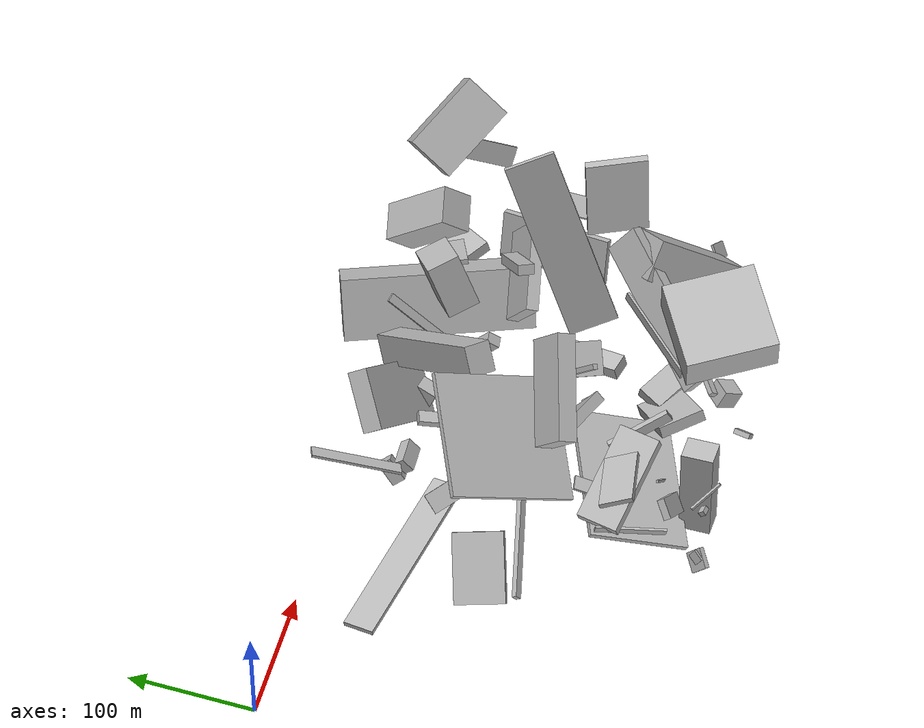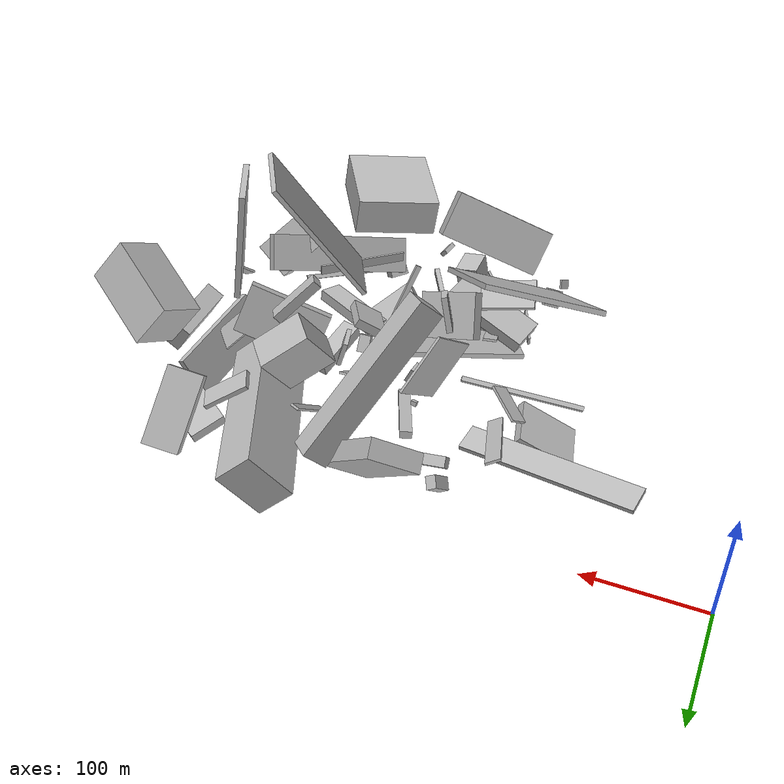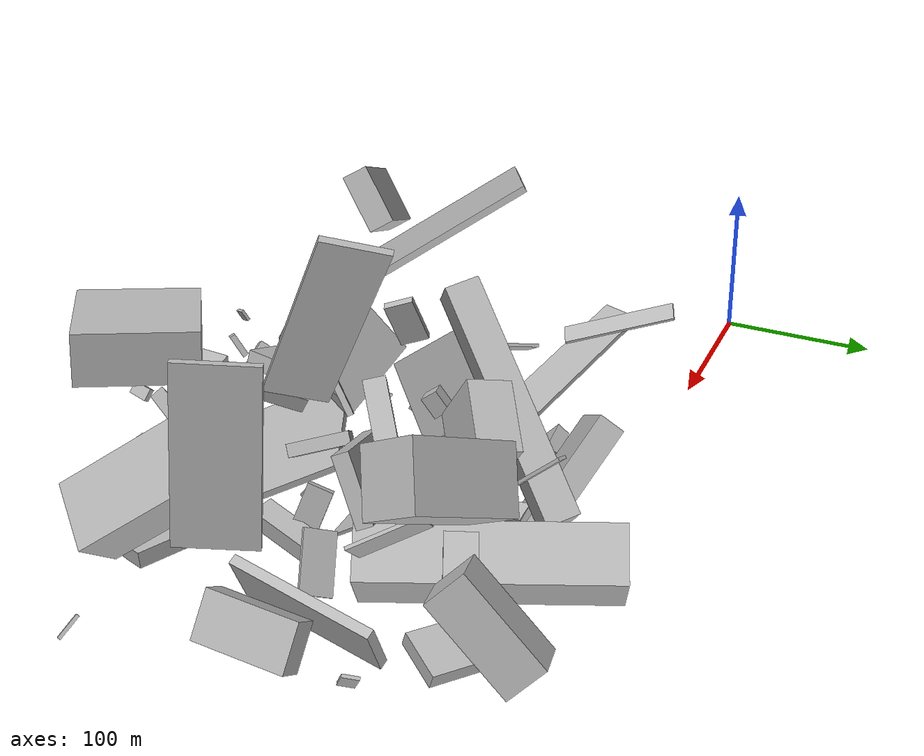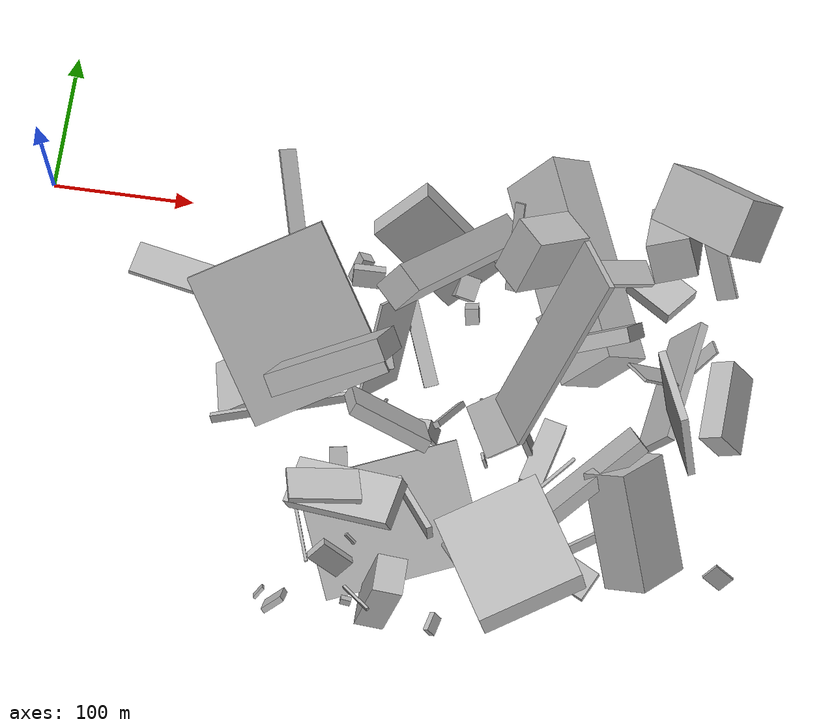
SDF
<sdf version="1.6">
 <world name="default">
  <model name="building_3">
   <static>0</static>
   <pose>400.7232043774016 -100.26530416382178 36.819228830014104 1.5746231596231484 -0.6868995202137004 -2.7741150252003943</pose>
   <link name="link">
    <gravity>0</gravity>
    <pose>0 0 75.0 0 0 0</pose>
    <collision name="collision"><geometry><box><size>35 49 150</size></box></geometry></collision>
    <visual name="visual">
     <cast_shadows>0</cast_shadows>
     <geometry><box><size>35 49 150</size></box></geometry>
     <material>
      <script>
       <uri>model://HANNAS_wall/materials/scripts</uri>
       <uri>model://HANNAS_wall/materials/textures</uri>
       <name>vrc/HANNAS_wall</name>
      </script>
     </material>
    </visual>
   </link>
  </model>
  <model name="building_6">
   <static>0</static>
   <pose>249.8059960162078 -9.35989626910145 60.050411777133206 -2.4407371661502517 -0.5982015795128744 -1.425143302162848</pose>
   <link name="link">
    <gravity>0</gravity>
    <pose>0 0 39.5 0 0 0</pose>
    <collision name="collision"><geometry><box><size>17 48 79</size></box></geometry></collision>
    <visual name="visual">
     <cast_shadows>0</cast_shadows>
     <geometry><box><size>17 48 79</size></box></geometry>
     <material>
      <script>
       <uri>model://HANNAS_wall/materials/scripts</uri>
       <uri>model://HANNAS_wall/materials/textures</uri>
       <name>vrc/HANNAS_wall</name>
      </script>
     </material>
    </visual>
   </link>
  </model>
  <model name="building_8">
   <static>0</static>
   <pose>283.82453941514325 -58.07409207703948 78.27835317954093 0.7826187650565872 -0.1846948708546161 2.349083935095155</pose>
   <link name="link">
    <gravity>0</gravity>
    <pose>0 0 12.0 0 0 0</pose>
    <collision name="collision"><geometry><box><size>21 150 24</size></box></geometry></collision>
    <visual name="visual">
     <cast_shadows>0</cast_shadows>
     <geometry><box><size>21 150 24</size></box></geometry>
     <material>
      <script>
       <uri>model://HANNAS_wall/materials/scripts</uri>
       <uri>model://HANNAS_wall/materials/textures</uri>
       <name>vrc/HANNAS_wall</name>
      </script>
     </material>
    </visual>
   </link>
  </model>
  <model name="building_11">
   <static>0</static>
   <pose>342.0750665528675 -164.25402432366943 97.11386991848852 0.30846788776308837 -0.4633881316802767 -2.7723222896151545</pose>
   <link name="link">
    <gravity>0</gravity>
    <pose>0 0 75.0 0 0 0</pose>
    <collision name="collision"><geometry><box><size>4 39 150</size></box></geometry></collision>
    <visual name="visual">
     <cast_shadows>0</cast_shadows>
     <geometry><box><size>4 39 150</size></box></geometry>
     <material>
      <script>
       <uri>model://HANNAS_wall/materials/scripts</uri>
       <uri>model://HANNAS_wall/materials/textures</uri>
       <name>vrc/HANNAS_wall</name>
      </script>
     </material>
    </visual>
   </link>
  </model>
  <model name="building_15">
   <static>0</static>
   <pose>256.10322530967653 -179.5139326060927 24.528524624304758 -1.9832252682769322 0.03601611775122781 -2.7498001587166243</pose>
   <link name="link">
    <gravity>0</gravity>
    <pose>0 0 41.5 0 0 0</pose>
    <collision name="collision"><geometry><box><size>112 4 83</size></box></geometry></collision>
    <visual name="visual">
     <cast_shadows>0</cast_shadows>
     <geometry><box><size>112 4 83</size></box></geometry>
     <material>
      <script>
       <uri>model://HANNAS_wall/materials/scripts</uri>
       <uri>model://HANNAS_wall/materials/textures</uri>
       <name>vrc/HANNAS_wall</name>
      </script>
     </material>
    </visual>
   </link>
  </model>
  <model name="building_17">
   <static>0</static>
   <pose>275.80232383729583 -220.3252380281648 66.06047719996454 -1.9225408868727267 0.03156974143122351 1.3616282650019396</pose>
   <link name="link">
    <gravity>0</gravity>
    <pose>0 0 38.5 0 0 0</pose>
    <collision name="collision"><geometry><box><size>33 11 77</size></box></geometry></collision>
    <visual name="visual">
     <cast_shadows>0</cast_shadows>
     <geometry><box><size>33 11 77</size></box></geometry>
     <material>
      <script>
       <uri>model://HANNAS_wall/materials/scripts</uri>
       <uri>model://HANNAS_wall/materials/textures</uri>
       <name>vrc/HANNAS_wall</name>
      </script>
     </material>
    </visual>
   </link>
  </model>
  <model name="building_20">
   <static>0</static>
   <pose>455.6300632716984 -153.53637858365113 69.32458853663478 -0.061413059446901036 -0.12822496730034946 0.4000631064691787</pose>
   <link name="link">
    <gravity>0</gravity>
    <pose>0 0 53.0 0 0 0</pose>
    <collision name="collision"><geometry><box><size>5 48 106</size></box></geometry></collision>
    <visual name="visual">
     <cast_shadows>0</cast_shadows>
     <geometry><box><size>5 48 106</size></box></geometry>
     <material>
      <script>
       <uri>model://HANNAS_wall/materials/scripts</uri>
       <uri>model://HANNAS_wall/materials/textures</uri>
       <name>vrc/HANNAS_wall</name>
      </script>
     </material>
    </visual>
   </link>
  </model>
  <model name="building_22">
   <static>0</static>
   <pose>203.31202137733933 -280.55106483838466 21.639780489372612 0.49846990535975133 -0.4425933166383371 0.600996795183263</pose>
   <link name="link">
    <gravity>0</gravity>
    <pose>0 0 8.0 0 0 0</pose>
    <collision name="collision"><geometry><box><size>16 4 16</size></box></geometry></collision>
    <visual name="visual">
     <cast_shadows>0</cast_shadows>
     <geometry><box><size>16 4 16</size></box></geometry>
     <material>
      <script>
       <uri>model://HANNAS_wall/materials/scripts</uri>
       <uri>model://HANNAS_wall/materials/textures</uri>
       <name>vrc/HANNAS_wall</name>
      </script>
     </material>
    </visual>
   </link>
  </model>
  <model name="building_30">
   <static>0</static>
   <pose>320.5811360759748 -242.96147282906216 25.59845704083638 -2.1562574136717734 -0.08900785039896718 -0.8705907861708161</pose>
   <link name="link">
    <gravity>0</gravity>
    <pose>0 0 26.0 0 0 0</pose>
    <collision name="collision"><geometry><box><size>37 9 52</size></box></geometry></collision>
    <visual name="visual">
     <cast_shadows>0</cast_shadows>
     <geometry><box><size>37 9 52</size></box></geometry>
     <material>
      <script>
       <uri>model://HANNAS_wall/materials/scripts</uri>
       <uri>model://HANNAS_wall/materials/textures</uri>
       <name>vrc/HANNAS_wall</name>
      </script>
     </material>
    </visual>
   </link>
  </model>
  <model name="building_37">
   <static>0</static>
   <pose>342.7870898554146 -56.39201421093652 86.16651222179708 0.5749660632005441 0.2207653361713216 2.2697604486269203</pose>
   <link name="link">
    <gravity>0</gravity>
    <pose>0 0 21.5 0 0 0</pose>
    <collision name="collision"><geometry><box><size>26 43 43</size></box></geometry></collision>
    <visual name="visual">
     <cast_shadows>0</cast_shadows>
     <geometry><box><size>26 43 43</size></box></geometry>
     <material>
      <script>
       <uri>model://HANNAS_wall/materials/scripts</uri>
       <uri>model://HANNAS_wall/materials/textures</uri>
       <name>vrc/HANNAS_wall</name>
      </script>
     </material>
    </visual>
   </link>
  </model>
  <model name="building_42">
   <static>0</static>
   <pose>218.45062146106616 -84.93931416702812 23.06443049843098 -1.1192822073408293 -1.4296665798428694 0.9473396144382871</pose>
   <link name="link">
    <gravity>0</gravity>
    <pose>0 0 75.0 0 0 0</pose>
    <collision name="collision"><geometry><box><size>4 24 150</size></box></geometry></collision>
    <visual name="visual">
     <cast_shadows>0</cast_shadows>
     <geometry><box><size>4 24 150</size></box></geometry>
     <material>
      <script>
       <uri>model://HANNAS_wall/materials/scripts</uri>
       <uri>model://HANNAS_wall/materials/textures</uri>
       <name>vrc/HANNAS_wall</name>
      </script>
     </material>
    </visual>
   </link>
  </model>
  <model name="building_56">
   <static>0</static>
   <pose>301.6837406844121 -160.57449679944932 90.04643139995792 -2.2499242430518294 -0.9132109262256742 -1.9810352446705801</pose>
   <link name="link">
    <gravity>0</gravity>
    <pose>0 0 2.0 0 0 0</pose>
    <collision name="collision"><geometry><box><size>55 4 4</size></box></geometry></collision>
    <visual name="visual">
     <cast_shadows>0</cast_shadows>
     <geometry><box><size>55 4 4</size></box></geometry>
     <material>
      <script>
       <uri>model://HANNAS_wall/materials/scripts</uri>
       <uri>model://HANNAS_wall/materials/textures</uri>
       <name>vrc/HANNAS_wall</name>
      </script>
     </material>
    </visual>
   </link>
  </model>
  <model name="building_61">
   <static>0</static>
   <pose>342.03449516944664 -170.9782879215725 56.28383366656549 1.352079697462719 0.5762649123531494 -2.754709867919487</pose>
   <link name="link">
    <gravity>0</gravity>
    <pose>0 0 18.5 0 0 0</pose>
    <collision name="collision"><geometry><box><size>27 8 37</size></box></geometry></collision>
    <visual name="visual">
     <cast_shadows>0</cast_shadows>
     <geometry><box><size>27 8 37</size></box></geometry>
     <material>
      <script>
       <uri>model://HANNAS_wall/materials/scripts</uri>
       <uri>model://HANNAS_wall/materials/textures</uri>
       <name>vrc/HANNAS_wall</name>
      </script>
     </material>
    </visual>
   </link>
  </model>
  <model name="building_63">
   <static>0</static>
   <pose>453.70757129632057 -37.60251704392006 137.69188865606054 0.6964917036857154 -0.878199727571596 -2.6859942797668612</pose>
   <link name="link">
    <gravity>0</gravity>
    <pose>0 0 19.5 0 0 0</pose>
    <collision name="collision"><geometry><box><size>38 66 39</size></box></geometry></collision>
    <visual name="visual">
     <cast_shadows>0</cast_shadows>
     <geometry><box><size>38 66 39</size></box></geometry>
     <material>
      <script>
       <uri>model://HANNAS_wall/materials/scripts</uri>
       <uri>model://HANNAS_wall/materials/textures</uri>
       <name>vrc/HANNAS_wall</name>
      </script>
     </material>
    </visual>
   </link>
  </model>
  <model name="building_66">
   <static>0</static>
   <pose>389.00644775721867 -251.35146654442886 24.913412805955144 -2.9186980805046154 -1.0122162704660531 -2.4811601793955247</pose>
   <link name="link">
    <gravity>0</gravity>
    <pose>0 0 2.0 0 0 0</pose>
    <collision name="collision"><geometry><box><size>10 5 4</size></box></geometry></collision>
    <visual name="visual">
     <cast_shadows>0</cast_shadows>
     <geometry><box><size>10 5 4</size></box></geometry>
     <material>
      <script>
       <uri>model://HANNAS_wall/materials/scripts</uri>
       <uri>model://HANNAS_wall/materials/textures</uri>
       <name>vrc/HANNAS_wall</name>
      </script>
     </material>
    </visual>
   </link>
  </model>
  <model name="building_67">
   <static>0</static>
   <pose>374.63086365784727 -160.3002726774081 15.95091853002203 -1.6543916277716617 -1.3280688763675144 1.409454460571306</pose>
   <link name="link">
    <gravity>0</gravity>
    <pose>0 0 8.0 0 0 0</pose>
    <collision name="collision"><geometry><box><size>11 52 16</size></box></geometry></collision>
    <visual name="visual">
     <cast_shadows>0</cast_shadows>
     <geometry><box><size>11 52 16</size></box></geometry>
     <material>
      <script>
       <uri>model://HANNAS_wall/materials/scripts</uri>
       <uri>model://HANNAS_wall/materials/textures</uri>
       <name>vrc/HANNAS_wall</name>
      </script>
     </material>
    </visual>
   </link>
  </model>
  <model name="building_69">
   <static>0</static>
   <pose>423.58658630744253 -27.499558955287103 43.62927521306019 -1.0193027162067871 0.0683366388946676 1.9913909757215567</pose>
   <link name="link">
    <gravity>0</gravity>
    <pose>0 0 21.0 0 0 0</pose>
    <collision name="collision"><geometry><box><size>19 4 42</size></box></geometry></collision>
    <visual name="visual">
     <cast_shadows>0</cast_shadows>
     <geometry><box><size>19 4 42</size></box></geometry>
     <material>
      <script>
       <uri>model://HANNAS_wall/materials/scripts</uri>
       <uri>model://HANNAS_wall/materials/textures</uri>
       <name>vrc/HANNAS_wall</name>
      </script>
     </material>
    </visual>
   </link>
  </model>
  <model name="building_75">
   <static>0</static>
   <pose>378.9665400062952 -199.55402995482305 68.71775584187155 0.58449938243396 -0.28144017469549026 0.7641359160350393</pose>
   <link name="link">
    <gravity>0</gravity>
    <pose>0 0 15.5 0 0 0</pose>
    <collision name="collision"><geometry><box><size>129 9 31</size></box></geometry></collision>
    <visual name="visual">
     <cast_shadows>0</cast_shadows>
     <geometry><box><size>129 9 31</size></box></geometry>
     <material>
      <script>
       <uri>model://HANNAS_wall/materials/scripts</uri>
       <uri>model://HANNAS_wall/materials/textures</uri>
       <name>vrc/HANNAS_wall</name>
      </script>
     </material>
    </visual>
   </link>
  </model>
  <model name="building_76">
   <static>0</static>
   <pose>335.17853056322235 -228.04115863604432 118.4510870282873 -1.1456977090863483 -1.430021187443493 -3.031741256014587</pose>
   <link name="link">
    <gravity>0</gravity>
    <pose>0 0 36.0 0 0 0</pose>
    <collision name="collision"><geometry><box><size>32 70 72</size></box></geometry></collision>
    <visual name="visual">
     <cast_shadows>0</cast_shadows>
     <geometry><box><size>32 70 72</size></box></geometry>
     <material>
      <script>
       <uri>model://HANNAS_wall/materials/scripts</uri>
       <uri>model://HANNAS_wall/materials/textures</uri>
       <name>vrc/HANNAS_wall</name>
      </script>
     </material>
    </visual>
   </link>
  </model>
  <model name="building_77">
   <static>0</static>
   <pose>455.8642511644523 -60.75334609800657 28.488894410486484 -1.411188696959997 -0.4510194526232841 2.901392364432419</pose>
   <link name="link">
    <gravity>0</gravity>
    <pose>0 0 45.5 0 0 0</pose>
    <collision name="collision"><geometry><box><size>6 39 91</size></box></geometry></collision>
    <visual name="visual">
     <cast_shadows>0</cast_shadows>
     <geometry><box><size>6 39 91</size></box></geometry>
     <material>
      <script>
       <uri>model://HANNAS_wall/materials/scripts</uri>
       <uri>model://HANNAS_wall/materials/textures</uri>
       <name>vrc/HANNAS_wall</name>
      </script>
     </material>
    </visual>
   </link>
  </model>
  <model name="building_78">
   <static>0</static>
   <pose>190.37337611935817 -148.0967305183933 24.541949124553405 -0.9268081945098159 0.19524713065919536 -2.9118855316253764</pose>
   <link name="link">
    <gravity>0</gravity>
    <pose>0 0 2.0 0 0 0</pose>
    <collision name="collision"><geometry><box><size>106 6 4</size></box></geometry></collision>
    <visual name="visual">
     <cast_shadows>0</cast_shadows>
     <geometry><box><size>106 6 4</size></box></geometry>
     <material>
      <script>
       <uri>model://HANNAS_wall/materials/scripts</uri>
       <uri>model://HANNAS_wall/materials/textures</uri>
       <name>vrc/HANNAS_wall</name>
      </script>
     </material>
    </visual>
   </link>
  </model>
  <model name="building_81">
   <static>0</static>
   <pose>183.76205360622504 -118.93189009528858 22.859686040570452 -2.8775550541175092 -0.9529834735342866 -3.139402621615978</pose>
   <link name="link">
    <gravity>0</gravity>
    <pose>0 0 27.5 0 0 0</pose>
    <collision name="collision"><geometry><box><size>8 40 55</size></box></geometry></collision>
    <visual name="visual">
     <cast_shadows>0</cast_shadows>
     <geometry><box><size>8 40 55</size></box></geometry>
     <material>
      <script>
       <uri>model://HANNAS_wall/materials/scripts</uri>
       <uri>model://HANNAS_wall/materials/textures</uri>
       <name>vrc/HANNAS_wall</name>
      </script>
     </material>
    </visual>
   </link>
  </model>
  <model name="building_83">
   <static>0</static>
   <pose>378.692360575143 -234.49550290713046 44.729598898674986 2.256088524381262 -0.0017739532466718826 0.5760848912105392</pose>
   <link name="link">
    <gravity>0</gravity>
    <pose>0 0 3.0 0 0 0</pose>
    <collision name="collision"><geometry><box><size>90 4 6</size></box></geometry></collision>
    <visual name="visual">
     <cast_shadows>0</cast_shadows>
     <geometry><box><size>90 4 6</size></box></geometry>
     <material>
      <script>
       <uri>model://HANNAS_wall/materials/scripts</uri>
       <uri>model://HANNAS_wall/materials/textures</uri>
       <name>vrc/HANNAS_wall</name>
      </script>
     </material>
    </visual>
   </link>
  </model>
  <model name="building_94">
   <static>0</static>
   <pose>194.2150375081659 -135.2967480162499 145.6976247948564 2.791481305953773 -0.49091473433358496 2.181394052836374</pose>
   <link name="link">
    <gravity>0</gravity>
    <pose>0 0 2.0 0 0 0</pose>
    <collision name="collision"><geometry><box><size>106 95 4</size></box></geometry></collision>
    <visual name="visual">
     <cast_shadows>0</cast_shadows>
     <geometry><box><size>106 95 4</size></box></geometry>
     <material>
      <script>
       <uri>model://HANNAS_wall/materials/scripts</uri>
       <uri>model://HANNAS_wall/materials/textures</uri>
       <name>vrc/HANNAS_wall</name>
      </script>
     </material>
    </visual>
   </link>
  </model>
  <model name="building_98">
   <static>0</static>
   <pose>377.9668277440448 -227.0735014212487 11.706374025916295 -2.985274855237979 -0.007883645874206811 -0.48545492642995236</pose>
   <link name="link">
    <gravity>0</gravity>
    <pose>0 0 5.0 0 0 0</pose>
    <collision name="collision"><geometry><box><size>71 21 10</size></box></geometry></collision>
    <visual name="visual">
     <cast_shadows>0</cast_shadows>
     <geometry><box><size>71 21 10</size></box></geometry>
     <material>
      <script>
       <uri>model://HANNAS_wall/materials/scripts</uri>
       <uri>model://HANNAS_wall/materials/textures</uri>
       <name>vrc/HANNAS_wall</name>
      </script>
     </material>
    </visual>
   </link>
  </model>
  <model name="building_100">
   <static>0</static>
   <pose>353.57212825610566 -104.63754038380979 70.68429046655261 0.7609633449727402 1.0338372561628417 1.044114014062493</pose>
   <link name="link">
    <gravity>0</gravity>
    <pose>0 0 35.0 0 0 0</pose>
    <collision name="collision"><geometry><box><size>42 10 70</size></box></geometry></collision>
    <visual name="visual">
     <cast_shadows>0</cast_shadows>
     <geometry><box><size>42 10 70</size></box></geometry>
     <material>
      <script>
       <uri>model://HANNAS_wall/materials/scripts</uri>
       <uri>model://HANNAS_wall/materials/textures</uri>
       <name>vrc/HANNAS_wall</name>
      </script>
     </material>
    </visual>
   </link>
  </model>
  <model name="building_102">
   <static>0</static>
   <pose>187.67808871741846 -57.17935320255938 76.97339272908772 1.230039278464681 -0.3925465923035534 -2.743150952206719</pose>
   <link name="link">
    <gravity>0</gravity>
    <pose>0 0 35.0 0 0 0</pose>
    <collision name="collision"><geometry><box><size>12 2 70</size></box></geometry></collision>
    <visual name="visual">
     <cast_shadows>0</cast_shadows>
     <geometry><box><size>12 2 70</size></box></geometry>
     <material>
      <script>
       <uri>model://HANNAS_wall/materials/scripts</uri>
       <uri>model://HANNAS_wall/materials/textures</uri>
       <name>vrc/HANNAS_wall</name>
      </script>
     </material>
    </visual>
   </link>
  </model>
  <model name="building_109">
   <static>0</static>
   <pose>442.2906440396457 -244.5617679803449 52.02047222714691 0.8489178652696278 -0.5672450973754882 -2.329650686880078</pose>
   <link name="link">
    <gravity>0</gravity>
    <pose>0 0 40.0 0 0 0</pose>
    <collision name="collision"><geometry><box><size>42 33 80</size></box></geometry></collision>
    <visual name="visual">
     <cast_shadows>0</cast_shadows>
     <geometry><box><size>42 33 80</size></box></geometry>
     <material>
      <script>
       <uri>model://HANNAS_wall/materials/scripts</uri>
       <uri>model://HANNAS_wall/materials/textures</uri>
       <name>vrc/HANNAS_wall</name>
      </script>
     </material>
    </visual>
   </link>
  </model>
  <model name="building_120">
   <static>0</static>
   <pose>474.26237849769825 -62.98052972588486 103.96808424975801 -0.87374163192506 -0.79611929234284 -0.14211253075174124</pose>
   <link name="link">
    <gravity>0</gravity>
    <pose>0 0 21.0 0 0 0</pose>
    <collision name="collision"><geometry><box><size>17 2 42</size></box></geometry></collision>
    <visual name="visual">
     <cast_shadows>0</cast_shadows>
     <geometry><box><size>17 2 42</size></box></geometry>
     <material>
      <script>
       <uri>model://HANNAS_wall/materials/scripts</uri>
       <uri>model://HANNAS_wall/materials/textures</uri>
       <name>vrc/HANNAS_wall</name>
      </script>
     </material>
    </visual>
   </link>
  </model>
  <model name="building_133">
   <static>0</static>
   <pose>236.75137851136412 -257.331870179014 41.999056242859744 2.342771935211681 -0.6793201863498327 2.847297059137873</pose>
   <link name="link">
    <gravity>0</gravity>
    <pose>0 0 3.0 0 0 0</pose>
    <collision name="collision"><geometry><box><size>26 16 6</size></box></geometry></collision>
    <visual name="visual">
     <cast_shadows>0</cast_shadows>
     <geometry><box><size>26 16 6</size></box></geometry>
     <material>
      <script>
       <uri>model://HANNAS_wall/materials/scripts</uri>
       <uri>model://HANNAS_wall/materials/textures</uri>
       <name>vrc/HANNAS_wall</name>
      </script>
     </material>
    </visual>
   </link>
  </model>
  <model name="building_138">
   <static>0</static>
   <pose>334.57306290378904 -125.3438051282944 18.649556073219202 -2.1932804751355475 -0.05953805358994427 3.075025915402399</pose>
   <link name="link">
    <gravity>0</gravity>
    <pose>0 0 11.0 0 0 0</pose>
    <collision name="collision"><geometry><box><size>29 2 22</size></box></geometry></collision>
    <visual name="visual">
     <cast_shadows>0</cast_shadows>
     <geometry><box><size>29 2 22</size></box></geometry>
     <material>
      <script>
       <uri>model://HANNAS_wall/materials/scripts</uri>
       <uri>model://HANNAS_wall/materials/textures</uri>
       <name>vrc/HANNAS_wall</name>
      </script>
     </material>
    </visual>
   </link>
  </model>
  <model name="building_141">
   <static>0</static>
   <pose>348.48565390434555 -265.6439430789362 28.12695520787818 0.5576087516655605 0.08684432045274591 0.729059731369129</pose>
   <link name="link">
    <gravity>0</gravity>
    <pose>0 0 7.5 0 0 0</pose>
    <collision name="collision"><geometry><box><size>16 17 15</size></box></geometry></collision>
    <visual name="visual">
     <cast_shadows>0</cast_shadows>
     <geometry><box><size>16 17 15</size></box></geometry>
     <material>
      <script>
       <uri>model://HANNAS_wall/materials/scripts</uri>
       <uri>model://HANNAS_wall/materials/textures</uri>
       <name>vrc/HANNAS_wall</name>
      </script>
     </material>
    </visual>
   </link>
  </model>
  <model name="building_144">
   <static>0</static>
   <pose>425.29170315274797 -42.209704685275895 24.953736101606363 1.850140861631733 0.11363607348067584 2.5267067650844606</pose>
   <link name="link">
    <gravity>0</gravity>
    <pose>0 0 15.5 0 0 0</pose>
    <collision name="collision"><geometry><box><size>37 9 31</size></box></geometry></collision>
    <visual name="visual">
     <cast_shadows>0</cast_shadows>
     <geometry><box><size>37 9 31</size></box></geometry>
     <material>
      <script>
       <uri>model://HANNAS_wall/materials/scripts</uri>
       <uri>model://HANNAS_wall/materials/textures</uri>
       <name>vrc/HANNAS_wall</name>
      </script>
     </material>
    </visual>
   </link>
  </model>
  <model name="building_160">
   <static>0</static>
   <pose>248.48393201222876 -242.76888070063077 52.436184985414776 1.1059395031036856 0.6293636018382271 -0.5712401930632344</pose>
   <link name="link">
    <gravity>0</gravity>
    <pose>0 0 1.0 0 0 0</pose>
    <collision name="collision"><geometry><box><size>9 2 2</size></box></geometry></collision>
    <visual name="visual">
     <cast_shadows>0</cast_shadows>
     <geometry><box><size>9 2 2</size></box></geometry>
     <material>
      <script>
       <uri>model://HANNAS_wall/materials/scripts</uri>
       <uri>model://HANNAS_wall/materials/textures</uri>
       <name>vrc/HANNAS_wall</name>
      </script>
     </material>
    </visual>
   </link>
  </model>
  <model name="building_161">
   <static>0</static>
   <pose>469.98809709306573 -76.87438423394211 14.358504564943306 -1.9090101754957063 -0.8439152349934734 0.6547666337845596</pose>
   <link name="link">
    <gravity>0</gravity>
    <pose>0 0 5.0 0 0 0</pose>
    <collision name="collision"><geometry><box><size>27 2 10</size></box></geometry></collision>
    <visual name="visual">
     <cast_shadows>0</cast_shadows>
     <geometry><box><size>27 2 10</size></box></geometry>
     <material>
      <script>
       <uri>model://HANNAS_wall/materials/scripts</uri>
       <uri>model://HANNAS_wall/materials/textures</uri>
       <name>vrc/HANNAS_wall</name>
      </script>
     </material>
    </visual>
   </link>
  </model>
  <model name="building_164">
   <static>0</static>
   <pose>452.7944323918544 -0.6709184443684109 52.53451348809 -1.9855708908745957 0.765762755563847 1.490940481445176</pose>
   <link name="link">
    <gravity>0</gravity>
    <pose>0 0 15.0 0 0 0</pose>
    <collision name="collision"><geometry><box><size>66 28 30</size></box></geometry></collision>
    <visual name="visual">
     <cast_shadows>0</cast_shadows>
     <geometry><box><size>66 28 30</size></box></geometry>
     <material>
      <script>
       <uri>model://HANNAS_wall/materials/scripts</uri>
       <uri>model://HANNAS_wall/materials/textures</uri>
       <name>vrc/HANNAS_wall</name>
      </script>
     </material>
    </visual>
   </link>
  </model>
  <model name="building_167">
   <static>0</static>
   <pose>192.81256888379622 -285.0755595584452 46.74404286133776 2.39905570534 1.033450458500303 1.832667025044761</pose>
   <link name="link">
    <gravity>0</gravity>
    <pose>0 0 1.0 0 0 0</pose>
    <collision name="collision"><geometry><box><size>8 9 2</size></box></geometry></collision>
    <visual name="visual">
     <cast_shadows>0</cast_shadows>
     <geometry><box><size>8 9 2</size></box></geometry>
     <material>
      <script>
       <uri>model://HANNAS_wall/materials/scripts</uri>
       <uri>model://HANNAS_wall/materials/textures</uri>
       <name>vrc/HANNAS_wall</name>
      </script>
     </material>
    </visual>
   </link>
  </model>
  <model name="building_168">
   <static>0</static>
   <pose>327.3460568246239 -163.22476841169257 13.052287750252077 0.8184809085715161 -0.19681944100388896 0.4229492824526815</pose>
   <link name="link">
    <gravity>0</gravity>
    <pose>0 0 5.0 0 0 0</pose>
    <collision name="collision"><geometry><box><size>2 7 10</size></box></geometry></collision>
    <visual name="visual">
     <cast_shadows>0</cast_shadows>
     <geometry><box><size>2 7 10</size></box></geometry>
     <material>
      <script>
       <uri>model://HANNAS_wall/materials/scripts</uri>
       <uri>model://HANNAS_wall/materials/textures</uri>
       <name>vrc/HANNAS_wall</name>
      </script>
     </material>
    </visual>
   </link>
  </model>
  <model name="building_170">
   <static>0</static>
   <pose>257.06722900853606 -148.243017459876 49.943173674339334 -0.8397261388320755 -0.01862867217839929 -0.4957408060060456</pose>
   <link name="link">
    <gravity>0</gravity>
    <pose>0 0 2.5 0 0 0</pose>
    <collision name="collision"><geometry><box><size>2 2 5</size></box></geometry></collision>
    <visual name="visual">
     <cast_shadows>0</cast_shadows>
     <geometry><box><size>2 2 5</size></box></geometry>
     <material>
      <script>
       <uri>model://HANNAS_wall/materials/scripts</uri>
       <uri>model://HANNAS_wall/materials/textures</uri>
       <name>vrc/HANNAS_wall</name>
      </script>
     </material>
    </visual>
   </link>
  </model>
  <model name="building_171">
   <static>0</static>
   <pose>257.93821569915593 -142.39423678772954 103.1532561581723 0.5273883705416627 1.2101560512822376 2.4485151033513635</pose>
   <link name="link">
    <gravity>0</gravity>
    <pose>0 0 9.0 0 0 0</pose>
    <collision name="collision"><geometry><box><size>30 5 18</size></box></geometry></collision>
    <visual name="visual">
     <cast_shadows>0</cast_shadows>
     <geometry><box><size>30 5 18</size></box></geometry>
     <material>
      <script>
       <uri>model://HANNAS_wall/materials/scripts</uri>
       <uri>model://HANNAS_wall/materials/textures</uri>
       <name>vrc/HANNAS_wall</name>
      </script>
     </material>
    </visual>
   </link>
  </model>
  <model name="building_172">
   <static>0</static>
   <pose>233.25682615930128 -51.449259589552554 28.16282381305726 -2.2962712782470396 0.09306465288671514 0.04848714262025492</pose>
   <link name="link">
    <gravity>0</gravity>
    <pose>0 0 4.5 0 0 0</pose>
    <collision name="collision"><geometry><box><size>22 13 9</size></box></geometry></collision>
    <visual name="visual">
     <cast_shadows>0</cast_shadows>
     <geometry><box><size>22 13 9</size></box></geometry>
     <material>
      <script>
       <uri>model://HANNAS_wall/materials/scripts</uri>
       <uri>model://HANNAS_wall/materials/textures</uri>
       <name>vrc/HANNAS_wall</name>
      </script>
     </material>
    </visual>
   </link>
  </model>
  <model name="building_181">
   <static>0</static>
   <pose>308.64960592535965 -86.30315550116993 84.25714774290816 0.6459808644494199 -0.08682089189609803 0.14075975544298233</pose>
   <link name="link">
    <gravity>0</gravity>
    <pose>0 0 7.0 0 0 0</pose>
    <collision name="collision"><geometry><box><size>9 11 14</size></box></geometry></collision>
    <visual name="visual">
     <cast_shadows>0</cast_shadows>
     <geometry><box><size>9 11 14</size></box></geometry>
     <material>
      <script>
       <uri>model://HANNAS_wall/materials/scripts</uri>
       <uri>model://HANNAS_wall/materials/textures</uri>
       <name>vrc/HANNAS_wall</name>
      </script>
     </material>
    </visual>
   </link>
  </model>
  <model name="building_185">
   <static>0</static>
   <pose>230.16205437859935 -228.0050140669266 78.55919757616053 -1.9985901880870622 0.17299158502240258 0.16616158537221887</pose>
   <link name="link">
    <gravity>0</gravity>
    <pose>0 0 13.5 0 0 0</pose>
    <collision name="collision"><geometry><box><size>48 4 27</size></box></geometry></collision>
    <visual name="visual">
     <cast_shadows>0</cast_shadows>
     <geometry><box><size>48 4 27</size></box></geometry>
     <material>
      <script>
       <uri>model://HANNAS_wall/materials/scripts</uri>
       <uri>model://HANNAS_wall/materials/textures</uri>
       <name>vrc/HANNAS_wall</name>
      </script>
     </material>
    </visual>
   </link>
  </model>
  <model name="building_191">
   <static>0</static>
   <pose>271.80630107821156 -85.80189877498765 34.704599463074764 -2.845519266553119 -0.04590047314928515 0.3702690318376813</pose>
   <link name="link">
    <gravity>0</gravity>
    <pose>0 0 3.0 0 0 0</pose>
    <collision name="collision"><geometry><box><size>10 80 6</size></box></geometry></collision>
    <visual name="visual">
     <cast_shadows>0</cast_shadows>
     <geometry><box><size>10 80 6</size></box></geometry>
     <material>
      <script>
       <uri>model://HANNAS_wall/materials/scripts</uri>
       <uri>model://HANNAS_wall/materials/textures</uri>
       <name>vrc/HANNAS_wall</name>
      </script>
     </material>
    </visual>
   </link>
  </model>
  <model name="building_192">
   <static>0</static>
   <pose>273.9332296322337 -197.32580578722477 42.63116046278279 1.114618588792637 0.10870217548467712 0.5323994199005677</pose>
   <link name="link">
    <gravity>0</gravity>
    <pose>0 0 26.0 0 0 0</pose>
    <collision name="collision"><geometry><box><size>4 10 52</size></box></geometry></collision>
    <visual name="visual">
     <cast_shadows>0</cast_shadows>
     <geometry><box><size>4 10 52</size></box></geometry>
     <material>
      <script>
       <uri>model://HANNAS_wall/materials/scripts</uri>
       <uri>model://HANNAS_wall/materials/textures</uri>
       <name>vrc/HANNAS_wall</name>
      </script>
     </material>
    </visual>
   </link>
  </model>
  <model name="building_195">
   <static>0</static>
   <pose>193.34809481468483 -174.60266771863968 152.2586609441886 1.073655244321366 -0.4537797855203929 2.1029818257239903</pose>
   <link name="link">
    <gravity>0</gravity>
    <pose>0 0 40.0 0 0 0</pose>
    <collision name="collision"><geometry><box><size>15 35 80</size></box></geometry></collision>
    <visual name="visual">
     <cast_shadows>0</cast_shadows>
     <geometry><box><size>15 35 80</size></box></geometry>
     <material>
      <script>
       <uri>model://HANNAS_wall/materials/scripts</uri>
       <uri>model://HANNAS_wall/materials/textures</uri>
       <name>vrc/HANNAS_wall</name>
      </script>
     </material>
    </visual>
   </link>
  </model>
  <model name="building_200">
   <static>0</static>
   <pose>277.94123191800776 -266.4947351242309 61.425327252474055 -3.0811240332363923 -0.15968265830107473 3.1141018746180245</pose>
   <link name="link">
    <gravity>0</gravity>
    <pose>0 0 40.0 0 0 0</pose>
    <collision name="collision"><geometry><box><size>20 25 80</size></box></geometry></collision>
    <visual name="visual">
     <cast_shadows>0</cast_shadows>
     <geometry><box><size>20 25 80</size></box></geometry>
     <material>
      <script>
       <uri>model://HANNAS_wall/materials/scripts</uri>
       <uri>model://HANNAS_wall/materials/textures</uri>
       <name>vrc/HANNAS_wall</name>
      </script>
     </material>
    </visual>
   </link>
  </model>
  <model name="building_205">
   <static>0</static>
   <pose>366.9024658029755 -90.23249205713024 114.33710885247083 1.819063548646583 -0.8506539104174561 0.32659045210595655</pose>
   <link name="link">
    <gravity>0</gravity>
    <pose>0 0 6.5 0 0 0</pose>
    <collision name="collision"><geometry><box><size>8 45 13</size></box></geometry></collision>
    <visual name="visual">
     <cast_shadows>0</cast_shadows>
     <geometry><box><size>8 45 13</size></box></geometry>
     <material>
      <script>
       <uri>model://HANNAS_wall/materials/scripts</uri>
       <uri>model://HANNAS_wall/materials/textures</uri>
       <name>vrc/HANNAS_wall</name>
      </script>
     </material>
    </visual>
   </link>
  </model>
  <model name="building_212">
   <static>0</static>
   <pose>310.62743312958236 -286.45225181561136 49.185930638232584 1.3998171290203532 -0.6778655245382006 -0.13665191930254272</pose>
   <link name="link">
    <gravity>0</gravity>
    <pose>0 0 6.5 0 0 0</pose>
    <collision name="collision"><geometry><box><size>4 8 13</size></box></geometry></collision>
    <visual name="visual">
     <cast_shadows>0</cast_shadows>
     <geometry><box><size>4 8 13</size></box></geometry>
     <material>
      <script>
       <uri>model://HANNAS_wall/materials/scripts</uri>
       <uri>model://HANNAS_wall/materials/textures</uri>
       <name>vrc/HANNAS_wall</name>
      </script>
     </material>
    </visual>
   </link>
  </model>
  <model name="building_217">
   <static>0</static>
   <pose>387.1745086640278 -179.02644527327706 81.54447095680854 2.392897962770498 -1.4161825082994413 -1.5661553596681375</pose>
   <link name="link">
    <gravity>0</gravity>
    <pose>0 0 40.0 0 0 0</pose>
    <collision name="collision"><geometry><box><size>8 2 80</size></box></geometry></collision>
    <visual name="visual">
     <cast_shadows>0</cast_shadows>
     <geometry><box><size>8 2 80</size></box></geometry>
     <material>
      <script>
       <uri>model://HANNAS_wall/materials/scripts</uri>
       <uri>model://HANNAS_wall/materials/textures</uri>
       <name>vrc/HANNAS_wall</name>
      </script>
     </material>
    </visual>
   </link>
  </model>
  <model name="building_220">
   <static>0</static>
   <pose>260.61238705087266 -169.6037296819391 74.79358357845626 0.6631733814994198 0.9014718253847973 1.8761286381761004</pose>
   <link name="link">
    <gravity>0</gravity>
    <pose>0 0 4.5 0 0 0</pose>
    <collision name="collision"><geometry><box><size>39 57 9</size></box></geometry></collision>
    <visual name="visual">
     <cast_shadows>0</cast_shadows>
     <geometry><box><size>39 57 9</size></box></geometry>
     <material>
      <script>
       <uri>model://HANNAS_wall/materials/scripts</uri>
       <uri>model://HANNAS_wall/materials/textures</uri>
       <name>vrc/HANNAS_wall</name>
      </script>
     </material>
    </visual>
   </link>
  </model>
  <model name="building_225">
   <static>0</static>
   <pose>230.92553307576176 -180.73754499570074 48.59377987310718 3.1228191955601954 1.1630554340088737 1.7277657489510403</pose>
   <link name="link">
    <gravity>0</gravity>
    <pose>0 0 19.0 0 0 0</pose>
    <collision name="collision"><geometry><box><size>2 12 38</size></box></geometry></collision>
    <visual name="visual">
     <cast_shadows>0</cast_shadows>
     <geometry><box><size>2 12 38</size></box></geometry>
     <material>
      <script>
       <uri>model://HANNAS_wall/materials/scripts</uri>
       <uri>model://HANNAS_wall/materials/textures</uri>
       <name>vrc/HANNAS_wall</name>
      </script>
     </material>
    </visual>
   </link>
  </model>
  <model name="building_226">
   <static>0</static>
   <pose>440.22417734468996 -112.01869524665311 61.279064868130455 2.0791918504820357 0.6165011554692587 -2.0610414871332474</pose>
   <link name="link">
    <gravity>0</gravity>
    <pose>0 0 10.0 0 0 0</pose>
    <collision name="collision"><geometry><box><size>2 36 20</size></box></geometry></collision>
    <visual name="visual">
     <cast_shadows>0</cast_shadows>
     <geometry><box><size>2 36 20</size></box></geometry>
     <material>
      <script>
       <uri>model://HANNAS_wall/materials/scripts</uri>
       <uri>model://HANNAS_wall/materials/textures</uri>
       <name>vrc/HANNAS_wall</name>
      </script>
     </material>
    </visual>
   </link>
  </model>
  <model name="building_227">
   <static>0</static>
   <pose>264.59065076280945 -88.54760557113504 44.47113377346461 -3.049446024807307 0.2558766144925951 -1.71532327535891</pose>
   <link name="link">
    <gravity>0</gravity>
    <pose>0 0 2.0 0 0 0</pose>
    <collision name="collision"><geometry><box><size>3 5 4</size></box></geometry></collision>
    <visual name="visual">
     <cast_shadows>0</cast_shadows>
     <geometry><box><size>3 5 4</size></box></geometry>
     <material>
      <script>
       <uri>model://HANNAS_wall/materials/scripts</uri>
       <uri>model://HANNAS_wall/materials/textures</uri>
       <name>vrc/HANNAS_wall</name>
      </script>
     </material>
    </visual>
   </link>
  </model>
  <model name="building_229">
   <static>0</static>
   <pose>284.4321070139854 -156.43973415408092 13.989124951436292 -1.647024289519173 1.1428235261200064 -0.2072534453625656</pose>
   <link name="link">
    <gravity>0</gravity>
    <pose>0 0 5.5 0 0 0</pose>
    <collision name="collision"><geometry><box><size>17 15 11</size></box></geometry></collision>
    <visual name="visual">
     <cast_shadows>0</cast_shadows>
     <geometry><box><size>17 15 11</size></box></geometry>
     <material>
      <script>
       <uri>model://HANNAS_wall/materials/scripts</uri>
       <uri>model://HANNAS_wall/materials/textures</uri>
       <name>vrc/HANNAS_wall</name>
      </script>
     </material>
    </visual>
   </link>
  </model>
  <model name="building_232">
   <static>0</static>
   <pose>354.06269337052254 -153.48491566620817 22.81426208958409 1.2941117366374106 0.3520025975671646 1.74259568912834</pose>
   <link name="link">
    <gravity>0</gravity>
    <pose>0 0 2.0 0 0 0</pose>
    <collision name="collision"><geometry><box><size>16 40 4</size></box></geometry></collision>
    <visual name="visual">
     <cast_shadows>0</cast_shadows>
     <geometry><box><size>16 40 4</size></box></geometry>
     <material>
      <script>
       <uri>model://HANNAS_wall/materials/scripts</uri>
       <uri>model://HANNAS_wall/materials/textures</uri>
       <name>vrc/HANNAS_wall</name>
      </script>
     </material>
    </visual>
   </link>
  </model>
  <model name="building_234">
   <static>0</static>
   <pose>301.9412851771154 -45.39044299305313 21.133688724209804 -2.8566485883688504 0.2824340074100025 -0.1179320153050456</pose>
   <link name="link">
    <gravity>0</gravity>
    <pose>0 0 9.5 0 0 0</pose>
    <collision name="collision"><geometry><box><size>14 16 19</size></box></geometry></collision>
    <visual name="visual">
     <cast_shadows>0</cast_shadows>
     <geometry><box><size>14 16 19</size></box></geometry>
     <material>
      <script>
       <uri>model://HANNAS_wall/materials/scripts</uri>
       <uri>model://HANNAS_wall/materials/textures</uri>
       <name>vrc/HANNAS_wall</name>
      </script>
     </material>
    </visual>
   </link>
  </model>
  <model name="building_237">
   <static>0</static>
   <pose>256.19248650333736 -277.28538620653313 34.302030965321904 2.605302316256419 0.1620492361251188 0.7320317967273733</pose>
   <link name="link">
    <gravity>0</gravity>
    <pose>0 0 1.0 0 0 0</pose>
    <collision name="collision"><geometry><box><size>2 29 2</size></box></geometry></collision>
    <visual name="visual">
     <cast_shadows>0</cast_shadows>
     <geometry><box><size>2 29 2</size></box></geometry>
     <material>
      <script>
       <uri>model://HANNAS_wall/materials/scripts</uri>
       <uri>model://HANNAS_wall/materials/textures</uri>
       <name>vrc/HANNAS_wall</name>
      </script>
     </material>
    </visual>
   </link>
  </model>
  <model name="building_238">
   <static>0</static>
   <pose>188.56231805024822 -94.8849488269217 60.02135592538192 -0.603053072824847 0.25317352805201654 2.365154593476764</pose>
   <link name="link">
    <gravity>0</gravity>
    <pose>0 0 1.0 0 0 0</pose>
    <collision name="collision"><geometry><box><size>35 16 2</size></box></geometry></collision>
    <visual name="visual">
     <cast_shadows>0</cast_shadows>
     <geometry><box><size>35 16 2</size></box></geometry>
     <material>
      <script>
       <uri>model://HANNAS_wall/materials/scripts</uri>
       <uri>model://HANNAS_wall/materials/textures</uri>
       <name>vrc/HANNAS_wall</name>
      </script>
     </material>
    </visual>
   </link>
  </model>
  <model name="building_240">
   <static>0</static>
   <pose>477.87504741989255 -117.98175870936217 40.95580036010316 0.981425327374822 0.06391071235418735 1.5064157691295659</pose>
   <link name="link">
    <gravity>0</gravity>
    <pose>0 0 8.5 0 0 0</pose>
    <collision name="collision"><geometry><box><size>56 29 17</size></box></geometry></collision>
    <visual name="visual">
     <cast_shadows>0</cast_shadows>
     <geometry><box><size>56 29 17</size></box></geometry>
     <material>
      <script>
       <uri>model://HANNAS_wall/materials/scripts</uri>
       <uri>model://HANNAS_wall/materials/textures</uri>
       <name>vrc/HANNAS_wall</name>
      </script>
     </material>
    </visual>
   </link>
  </model>
  <model name="building_243">
   <static>0</static>
   <pose>256.12209222616394 -109.99938257069626 66.44491284619507 1.898174162560634 -0.8279677024382858 -2.1692540658016135</pose>
   <link name="link">
    <gravity>0</gravity>
    <pose>0 0 1.0 0 0 0</pose>
    <collision name="collision"><geometry><box><size>54 68 2</size></box></geometry></collision>
    <visual name="visual">
     <cast_shadows>0</cast_shadows>
     <geometry><box><size>54 68 2</size></box></geometry>
     <material>
      <script>
       <uri>model://HANNAS_wall/materials/scripts</uri>
       <uri>model://HANNAS_wall/materials/textures</uri>
       <name>vrc/HANNAS_wall</name>
      </script>
     </material>
    </visual>
   </link>
  </model>
  <model name="building_247">
   <static>0</static>
   <pose>245.98473230324075 -277.7368348736722 24.322756848632906 -1.805205452204437 0.8185693380653414 -1.824028591810125</pose>
   <link name="link">
    <gravity>0</gravity>
    <pose>0 0 3.5 0 0 0</pose>
    <collision name="collision"><geometry><box><size>4 5 7</size></box></geometry></collision>
    <visual name="visual">
     <cast_shadows>0</cast_shadows>
     <geometry><box><size>4 5 7</size></box></geometry>
     <material>
      <script>
       <uri>model://HANNAS_wall/materials/scripts</uri>
       <uri>model://HANNAS_wall/materials/textures</uri>
       <name>vrc/HANNAS_wall</name>
      </script>
     </material>
    </visual>
   </link>
  </model>
  <model name="building_250">
   <static>0</static>
   <pose>211.18867440559885 -230.1475863579793 30.235013907834 -0.05520391957921031 -0.15816630383066957 1.9032192742491825</pose>
   <link name="link">
    <gravity>0</gravity>
    <pose>0 0 3.0 0 0 0</pose>
    <collision name="collision"><geometry><box><size>55 2 6</size></box></geometry></collision>
    <visual name="visual">
     <cast_shadows>0</cast_shadows>
     <geometry><box><size>55 2 6</size></box></geometry>
     <material>
      <script>
       <uri>model://HANNAS_wall/materials/scripts</uri>
       <uri>model://HANNAS_wall/materials/textures</uri>
       <name>vrc/HANNAS_wall</name>
      </script>
     </material>
    </visual>
   </link>
  </model>
  <model name="building_255">
   <static>0</static>
   <pose>229.01039518615823 -31.384493178963627 18.203464634869107 2.4432137620278893 0.510974974510131 0.10464749934506355</pose>
   <link name="link">
    <gravity>0</gravity>
    <pose>0 0 10.0 0 0 0</pose>
    <collision name="collision"><geometry><box><size>9 11 20</size></box></geometry></collision>
    <visual name="visual">
     <cast_shadows>0</cast_shadows>
     <geometry><box><size>9 11 20</size></box></geometry>
     <material>
      <script>
       <uri>model://HANNAS_wall/materials/scripts</uri>
       <uri>model://HANNAS_wall/materials/textures</uri>
       <name>vrc/HANNAS_wall</name>
      </script>
     </material>
    </visual>
   </link>
  </model>
  <model name="building_261">
   <static>0</static>
   <pose>330.9040405305862 -52.12422414034749 43.77096790070544 0.3691409528948845 -0.7662382515281264 -2.078683609966265</pose>
   <link name="link">
    <gravity>0</gravity>
    <pose>0 0 31.5 0 0 0</pose>
    <collision name="collision"><geometry><box><size>2 7 63</size></box></geometry></collision>
    <visual name="visual">
     <cast_shadows>0</cast_shadows>
     <geometry><box><size>2 7 63</size></box></geometry>
     <material>
      <script>
       <uri>model://HANNAS_wall/materials/scripts</uri>
       <uri>model://HANNAS_wall/materials/textures</uri>
       <name>vrc/HANNAS_wall</name>
      </script>
     </material>
    </visual>
   </link>
  </model>
  <model name="building_262">
   <static>0</static>
   <pose>486.304076074267 -225.73032799949863 24.47378458565294 -2.3104273259822765 -0.6476576612490873 -1.4575324710183708</pose>
   <link name="link">
    <gravity>0</gravity>
    <pose>0 0 8.0 0 0 0</pose>
    <collision name="collision"><geometry><box><size>2 13 16</size></box></geometry></collision>
    <visual name="visual">
     <cast_shadows>0</cast_shadows>
     <geometry><box><size>2 13 16</size></box></geometry>
     <material>
      <script>
       <uri>model://HANNAS_wall/materials/scripts</uri>
       <uri>model://HANNAS_wall/materials/textures</uri>
       <name>vrc/HANNAS_wall</name>
      </script>
     </material>
    </visual>
   </link>
  </model>
 </world>
</sdf>
